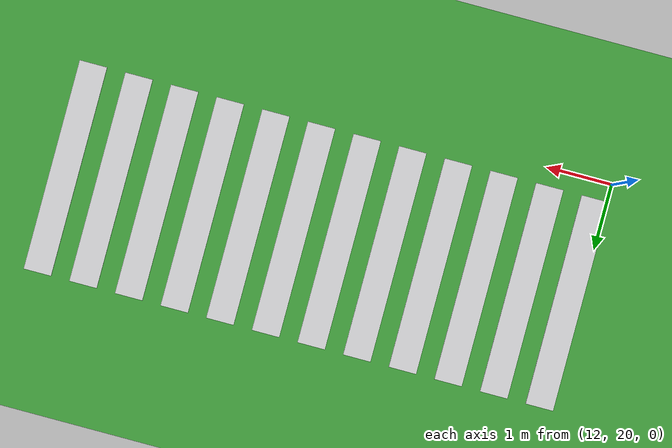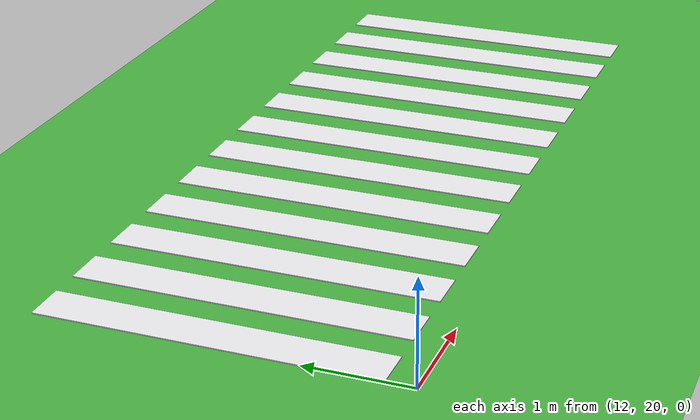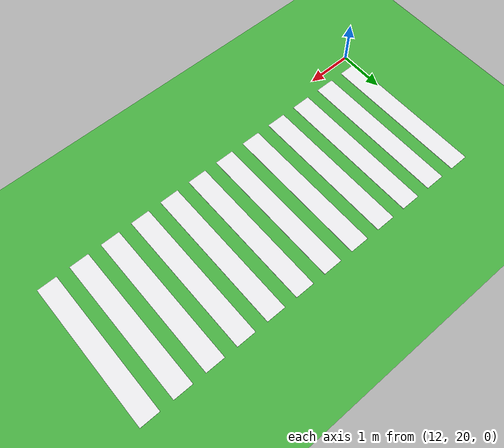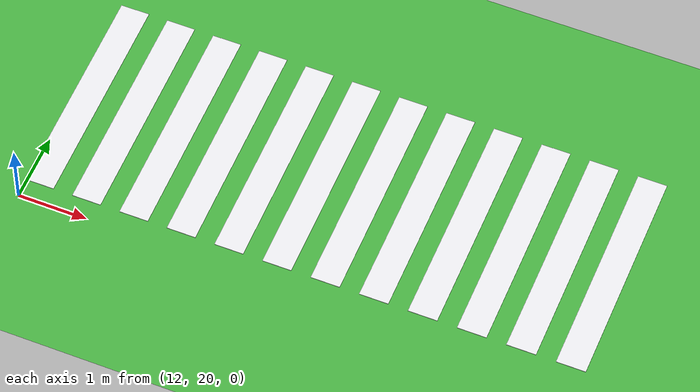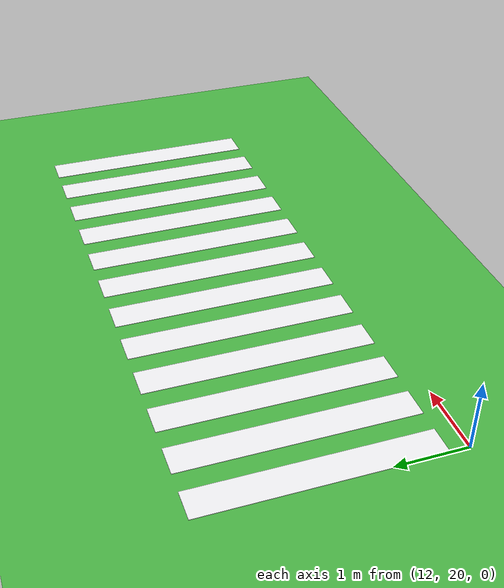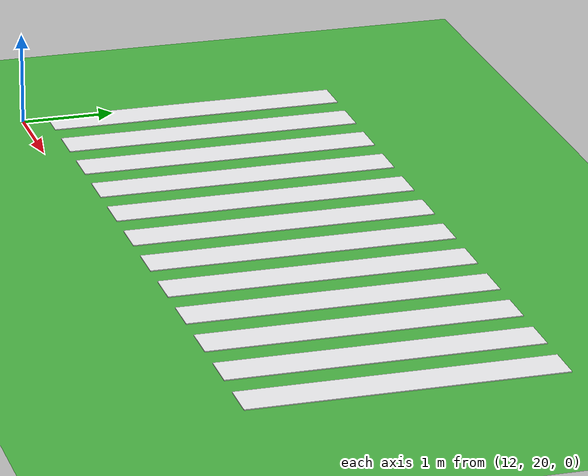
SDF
<sdf version="1.10">
 <world name="city_second">
  <model name="ground_plane">
   <static>true</static>
   <link name="link">
    <collision name="collision">
     <geometry><plane><normal>0 0 1</normal><size>300 300</size></plane></geometry>
    </collision>
    <visual name="visual">
     <geometry><plane><normal>0 0 1</normal><size>300 300</size></plane></geometry>
     <material>
      <ambient>0.280000001 0.689999998 0.25999999 1</ambient>
      <diffuse>0.280000001 0.689999998 0.25999999 1</diffuse>
      <specular>0.0299999993 0.0299999993 0.0299999993 1</specular>
     </material>
    </visual>
    <inertial>
     <mass>1</mass>
     <inertia><ixx>1</ixx><ixy>0</ixy><ixz>0</ixz><iyy>1</iyy><iyz>0</iyz><izz>1</izz></inertia>
    </inertial>
   </link>
  </model>
  <model name="crosswalk_h_1_1_south_5">
   <static>true</static>
   <pose>16.0335 21.8659 0.017000000000000001 0 0 0</pose>
   <link name="stripe_1">
    <collision name="collision">
     <geometry><box><size>0.41999999999999998 3.2000000000000002 0.01</size></box></geometry>
    </collision>
    <visual name="visual">
     <geometry><box><size>0.41999999999999998 3.2000000000000002 0.01</size></box></geometry>
     <material>
      <ambient>0.920000017 0.920000017 0.930000007 1</ambient>
      <diffuse>0.920000017 0.920000017 0.930000007 1</diffuse>
      <specular>0.0299999993 0.0299999993 0.0299999993 1</specular>
     </material>
    </visual>
    <pose>-3.8500000000000001 0 0 0 0 0</pose>
    <inertial>
     <mass>1</mass>
     <inertia><ixx>1</ixx><ixy>0</ixy><ixz>0</ixz><iyy>1</iyy><iyz>0</iyz><izz>1</izz></inertia>
    </inertial>
   </link>
   <link name="stripe_2">
    <collision name="collision">
     <geometry><box><size>0.41999999999999998 3.2000000000000002 0.01</size></box></geometry>
    </collision>
    <visual name="visual">
     <geometry><box><size>0.41999999999999998 3.2000000000000002 0.01</size></box></geometry>
     <material>
      <ambient>0.920000017 0.920000017 0.930000007 1</ambient>
      <diffuse>0.920000017 0.920000017 0.930000007 1</diffuse>
      <specular>0.0299999993 0.0299999993 0.0299999993 1</specular>
     </material>
    </visual>
    <pose>-3.1499999999999999 0 0 0 0 0</pose>
    <inertial>
     <mass>1</mass>
     <inertia><ixx>1</ixx><ixy>0</ixy><ixz>0</ixz><iyy>1</iyy><iyz>0</iyz><izz>1</izz></inertia>
    </inertial>
   </link>
   <link name="stripe_3">
    <collision name="collision">
     <geometry><box><size>0.41999999999999998 3.2000000000000002 0.01</size></box></geometry>
    </collision>
    <visual name="visual">
     <geometry><box><size>0.41999999999999998 3.2000000000000002 0.01</size></box></geometry>
     <material>
      <ambient>0.920000017 0.920000017 0.930000007 1</ambient>
      <diffuse>0.920000017 0.920000017 0.930000007 1</diffuse>
      <specular>0.0299999993 0.0299999993 0.0299999993 1</specular>
     </material>
    </visual>
    <pose>-2.4500000000000002 0 0 0 0 0</pose>
    <inertial>
     <mass>1</mass>
     <inertia><ixx>1</ixx><ixy>0</ixy><ixz>0</ixz><iyy>1</iyy><iyz>0</iyz><izz>1</izz></inertia>
    </inertial>
   </link>
   <link name="stripe_4">
    <collision name="collision">
     <geometry><box><size>0.41999999999999998 3.2000000000000002 0.01</size></box></geometry>
    </collision>
    <visual name="visual">
     <geometry><box><size>0.41999999999999998 3.2000000000000002 0.01</size></box></geometry>
     <material>
      <ambient>0.920000017 0.920000017 0.930000007 1</ambient>
      <diffuse>0.920000017 0.920000017 0.930000007 1</diffuse>
      <specular>0.0299999993 0.0299999993 0.0299999993 1</specular>
     </material>
    </visual>
    <pose>-1.75 0 0 0 0 0</pose>
    <inertial>
     <mass>1</mass>
     <inertia><ixx>1</ixx><ixy>0</ixy><ixz>0</ixz><iyy>1</iyy><iyz>0</iyz><izz>1</izz></inertia>
    </inertial>
   </link>
   <link name="stripe_5">
    <collision name="collision">
     <geometry><box><size>0.41999999999999998 3.2000000000000002 0.01</size></box></geometry>
    </collision>
    <visual name="visual">
     <geometry><box><size>0.41999999999999998 3.2000000000000002 0.01</size></box></geometry>
     <material>
      <ambient>0.920000017 0.920000017 0.930000007 1</ambient>
      <diffuse>0.920000017 0.920000017 0.930000007 1</diffuse>
      <specular>0.0299999993 0.0299999993 0.0299999993 1</specular>
     </material>
    </visual>
    <pose>-1.05 0 0 0 0 0</pose>
    <inertial>
     <mass>1</mass>
     <inertia><ixx>1</ixx><ixy>0</ixy><ixz>0</ixz><iyy>1</iyy><iyz>0</iyz><izz>1</izz></inertia>
    </inertial>
   </link>
   <link name="stripe_6">
    <collision name="collision">
     <geometry><box><size>0.41999999999999998 3.2000000000000002 0.01</size></box></geometry>
    </collision>
    <visual name="visual">
     <geometry><box><size>0.41999999999999998 3.2000000000000002 0.01</size></box></geometry>
     <material>
      <ambient>0.920000017 0.920000017 0.930000007 1</ambient>
      <diffuse>0.920000017 0.920000017 0.930000007 1</diffuse>
      <specular>0.0299999993 0.0299999993 0.0299999993 1</specular>
     </material>
    </visual>
    <pose>-0.34999999999999998 0 0 0 0 0</pose>
    <inertial>
     <mass>1</mass>
     <inertia><ixx>1</ixx><ixy>0</ixy><ixz>0</ixz><iyy>1</iyy><iyz>0</iyz><izz>1</izz></inertia>
    </inertial>
   </link>
   <link name="stripe_7">
    <collision name="collision">
     <geometry><box><size>0.41999999999999998 3.2000000000000002 0.01</size></box></geometry>
    </collision>
    <visual name="visual">
     <geometry><box><size>0.41999999999999998 3.2000000000000002 0.01</size></box></geometry>
     <material>
      <ambient>0.920000017 0.920000017 0.930000007 1</ambient>
      <diffuse>0.920000017 0.920000017 0.930000007 1</diffuse>
      <specular>0.0299999993 0.0299999993 0.0299999993 1</specular>
     </material>
    </visual>
    <pose>0.34999999999999998 0 0 0 0 0</pose>
    <inertial>
     <mass>1</mass>
     <inertia><ixx>1</ixx><ixy>0</ixy><ixz>0</ixz><iyy>1</iyy><iyz>0</iyz><izz>1</izz></inertia>
    </inertial>
   </link>
   <link name="stripe_8">
    <collision name="collision">
     <geometry><box><size>0.41999999999999998 3.2000000000000002 0.01</size></box></geometry>
    </collision>
    <visual name="visual">
     <geometry><box><size>0.41999999999999998 3.2000000000000002 0.01</size></box></geometry>
     <material>
      <ambient>0.920000017 0.920000017 0.930000007 1</ambient>
      <diffuse>0.920000017 0.920000017 0.930000007 1</diffuse>
      <specular>0.0299999993 0.0299999993 0.0299999993 1</specular>
     </material>
    </visual>
    <pose>1.05 0 0 0 0 0</pose>
    <inertial>
     <mass>1</mass>
     <inertia><ixx>1</ixx><ixy>0</ixy><ixz>0</ixz><iyy>1</iyy><iyz>0</iyz><izz>1</izz></inertia>
    </inertial>
   </link>
   <link name="stripe_9">
    <collision name="collision">
     <geometry><box><size>0.41999999999999998 3.2000000000000002 0.01</size></box></geometry>
    </collision>
    <visual name="visual">
     <geometry><box><size>0.41999999999999998 3.2000000000000002 0.01</size></box></geometry>
     <material>
      <ambient>0.920000017 0.920000017 0.930000007 1</ambient>
      <diffuse>0.920000017 0.920000017 0.930000007 1</diffuse>
      <specular>0.0299999993 0.0299999993 0.0299999993 1</specular>
     </material>
    </visual>
    <pose>1.75 0 0 0 0 0</pose>
    <inertial>
     <mass>1</mass>
     <inertia><ixx>1</ixx><ixy>0</ixy><ixz>0</ixz><iyy>1</iyy><iyz>0</iyz><izz>1</izz></inertia>
    </inertial>
   </link>
   <link name="stripe_10">
    <collision name="collision">
     <geometry><box><size>0.41999999999999998 3.2000000000000002 0.01</size></box></geometry>
    </collision>
    <visual name="visual">
     <geometry><box><size>0.41999999999999998 3.2000000000000002 0.01</size></box></geometry>
     <material>
      <ambient>0.920000017 0.920000017 0.930000007 1</ambient>
      <diffuse>0.920000017 0.920000017 0.930000007 1</diffuse>
      <specular>0.0299999993 0.0299999993 0.0299999993 1</specular>
     </material>
    </visual>
    <pose>2.4500000000000002 0 0 0 0 0</pose>
    <inertial>
     <mass>1</mass>
     <inertia><ixx>1</ixx><ixy>0</ixy><ixz>0</ixz><iyy>1</iyy><iyz>0</iyz><izz>1</izz></inertia>
    </inertial>
   </link>
   <link name="stripe_11">
    <collision name="collision">
     <geometry><box><size>0.41999999999999998 3.2000000000000002 0.01</size></box></geometry>
    </collision>
    <visual name="visual">
     <geometry><box><size>0.41999999999999998 3.2000000000000002 0.01</size></box></geometry>
     <material>
      <ambient>0.920000017 0.920000017 0.930000007 1</ambient>
      <diffuse>0.920000017 0.920000017 0.930000007 1</diffuse>
      <specular>0.0299999993 0.0299999993 0.0299999993 1</specular>
     </material>
    </visual>
    <pose>3.1499999999999999 0 0 0 0 0</pose>
    <inertial>
     <mass>1</mass>
     <inertia><ixx>1</ixx><ixy>0</ixy><ixz>0</ixz><iyy>1</iyy><iyz>0</iyz><izz>1</izz></inertia>
    </inertial>
   </link>
   <link name="stripe_12">
    <collision name="collision">
     <geometry><box><size>0.41999999999999998 3.2000000000000002 0.01</size></box></geometry>
    </collision>
    <visual name="visual">
     <geometry><box><size>0.41999999999999998 3.2000000000000002 0.01</size></box></geometry>
     <material>
      <ambient>0.920000017 0.920000017 0.930000007 1</ambient>
      <diffuse>0.920000017 0.920000017 0.930000007 1</diffuse>
      <specular>0.0299999993 0.0299999993 0.0299999993 1</specular>
     </material>
    </visual>
    <pose>3.8500000000000001 0 0 0 0 0</pose>
    <inertial>
     <mass>1</mass>
     <inertia><ixx>1</ixx><ixy>0</ixy><ixz>0</ixz><iyy>1</iyy><iyz>0</iyz><izz>1</izz></inertia>
    </inertial>
   </link>
  </model>
 </world>
</sdf>
